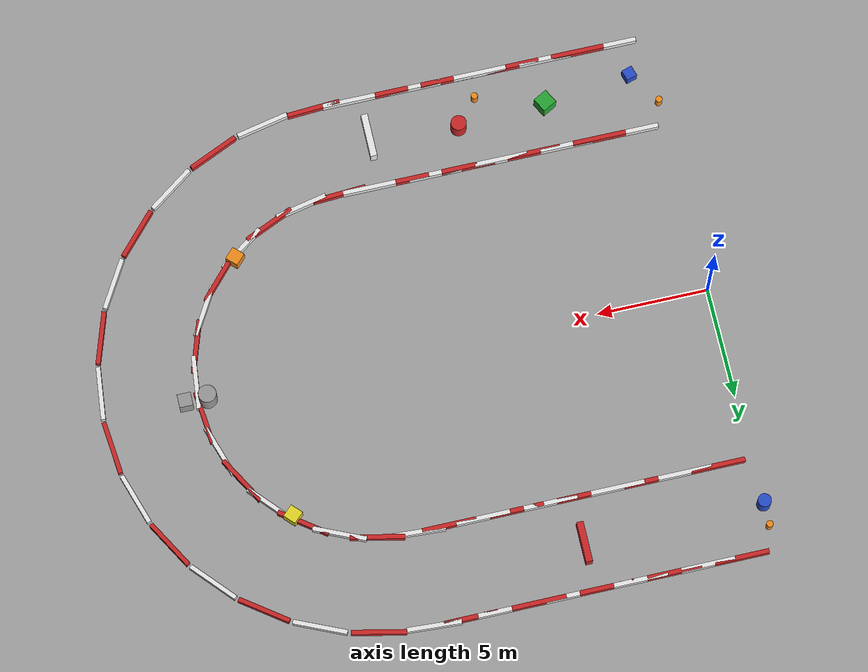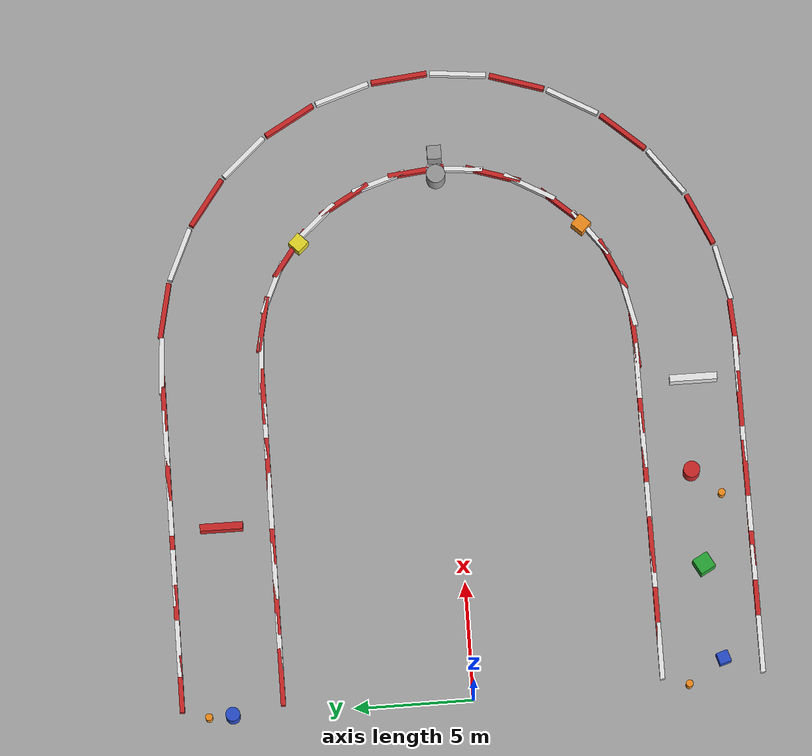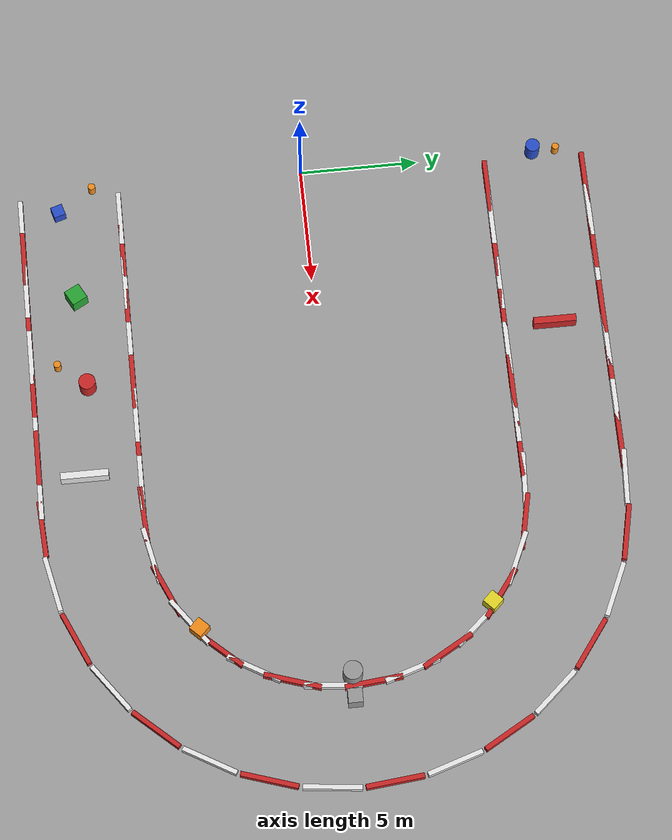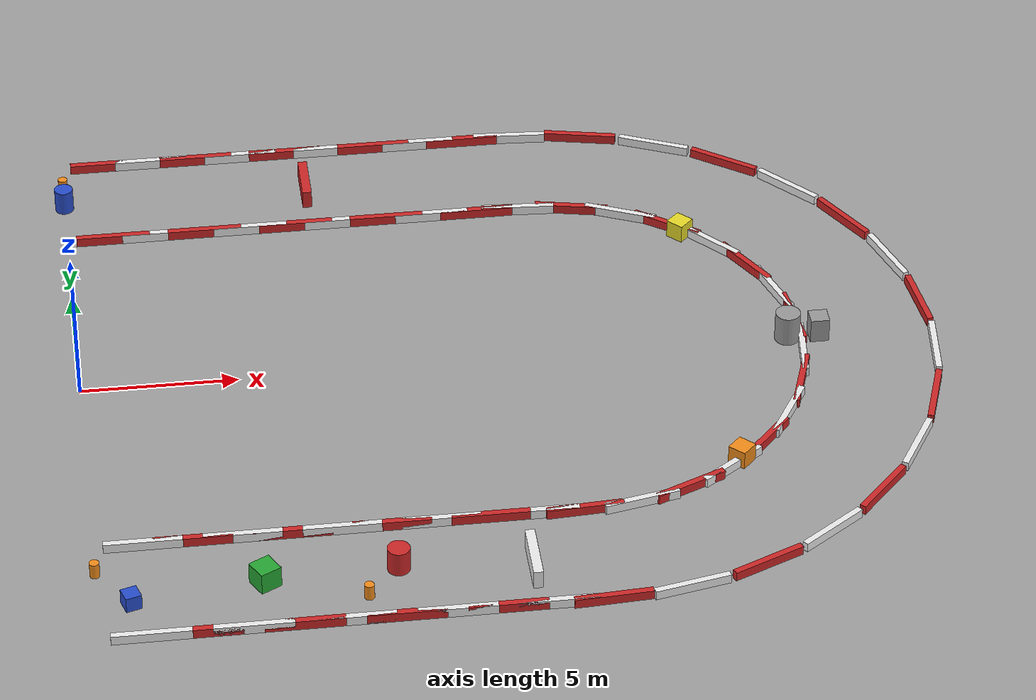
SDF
<sdf version="1.6">
 <world name="road_world">
  <include><uri>model://sun</uri></include>
  <model name="left_curb_11">
   <static>true</static>
   <pose>1.500 -7.900 0.15 0 0 0.000</pose>
   <link name="link">
    <collision name="collision"><geometry><box><size>2.4 0.2 0.3</size></box></geometry></collision>
    <visual name="visual">
     <geometry><box><size>2.4 0.2 0.3</size></box></geometry>
     <material>
      <script><uri>file://media/materials/scripts/gazebo.material</uri><name>Gazebo/White</name></script>
     </material>
    </visual>
   </link>
  </model>
  <model name="left_curb_12">
   <static>true</static>
   <pose>3.000 -7.900 0.15 0 0 0.000</pose>
   <link name="link">
    <collision name="collision"><geometry><box><size>2.4 0.2 0.3</size></box></geometry></collision>
    <visual name="visual">
     <geometry><box><size>2.4 0.2 0.3</size></box></geometry>
     <material>
      <script><uri>file://media/materials/scripts/gazebo.material</uri><name>Gazebo/Red</name></script>
     </material>
    </visual>
   </link>
  </model>
  <model name="left_curb_13">
   <static>true</static>
   <pose>4.500 -7.900 0.15 0 0 0.000</pose>
   <link name="link">
    <collision name="collision"><geometry><box><size>2.4 0.2 0.3</size></box></geometry></collision>
    <visual name="visual">
     <geometry><box><size>2.4 0.2 0.3</size></box></geometry>
     <material>
      <script><uri>file://media/materials/scripts/gazebo.material</uri><name>Gazebo/White</name></script>
     </material>
    </visual>
   </link>
  </model>
  <model name="left_curb_14">
   <static>true</static>
   <pose>6.000 -7.900 0.15 0 0 0.000</pose>
   <link name="link">
    <collision name="collision"><geometry><box><size>2.4 0.2 0.3</size></box></geometry></collision>
    <visual name="visual">
     <geometry><box><size>2.4 0.2 0.3</size></box></geometry>
     <material>
      <script><uri>file://media/materials/scripts/gazebo.material</uri><name>Gazebo/Red</name></script>
     </material>
    </visual>
   </link>
  </model>
  <model name="left_curb_15">
   <static>true</static>
   <pose>7.500 -7.900 0.15 0 0 0.000</pose>
   <link name="link">
    <collision name="collision"><geometry><box><size>2.4 0.2 0.3</size></box></geometry></collision>
    <visual name="visual">
     <geometry><box><size>2.4 0.2 0.3</size></box></geometry>
     <material>
      <script><uri>file://media/materials/scripts/gazebo.material</uri><name>Gazebo/White</name></script>
     </material>
    </visual>
   </link>
  </model>
  <model name="left_curb_16">
   <static>true</static>
   <pose>9.000 -7.900 0.15 0 0 0.000</pose>
   <link name="link">
    <collision name="collision"><geometry><box><size>2.4 0.2 0.3</size></box></geometry></collision>
    <visual name="visual">
     <geometry><box><size>2.4 0.2 0.3</size></box></geometry>
     <material>
      <script><uri>file://media/materials/scripts/gazebo.material</uri><name>Gazebo/Red</name></script>
     </material>
    </visual>
   </link>
  </model>
  <model name="left_curb_17">
   <static>true</static>
   <pose>10.500 -7.900 0.15 0 0 0.000</pose>
   <link name="link">
    <collision name="collision"><geometry><box><size>2.4 0.2 0.3</size></box></geometry></collision>
    <visual name="visual">
     <geometry><box><size>2.4 0.2 0.3</size></box></geometry>
     <material>
      <script><uri>file://media/materials/scripts/gazebo.material</uri><name>Gazebo/White</name></script>
     </material>
    </visual>
   </link>
  </model>
  <model name="left_curb_18">
   <static>true</static>
   <pose>12.000 -7.900 0.15 0 0 0.000</pose>
   <link name="link">
    <collision name="collision"><geometry><box><size>2.4 0.2 0.3</size></box></geometry></collision>
    <visual name="visual">
     <geometry><box><size>2.4 0.2 0.3</size></box></geometry>
     <material>
      <script><uri>file://media/materials/scripts/gazebo.material</uri><name>Gazebo/Red</name></script>
     </material>
    </visual>
   </link>
  </model>
  <model name="left_curb_19">
   <static>true</static>
   <pose>13.500 -7.900 0.15 0 0 0.000</pose>
   <link name="link">
    <collision name="collision"><geometry><box><size>2.4 0.2 0.3</size></box></geometry></collision>
    <visual name="visual">
     <geometry><box><size>2.4 0.2 0.3</size></box></geometry>
     <material>
      <script><uri>file://media/materials/scripts/gazebo.material</uri><name>Gazebo/White</name></script>
     </material>
    </visual>
   </link>
  </model>
  <model name="left_curb_20">
   <static>true</static>
   <pose>14.872 -7.904 0.15 0 0 0.061</pose>
   <link name="link">
    <collision name="collision"><geometry><box><size>2.4 0.2 0.3</size></box></geometry></collision>
    <visual name="visual">
     <geometry><box><size>2.4 0.2 0.3</size></box></geometry>
     <material>
      <script><uri>file://media/materials/scripts/gazebo.material</uri><name>Gazebo/Red</name></script>
     </material>
    </visual>
   </link>
  </model>
  <model name="left_curb_21">
   <static>true</static>
   <pose>16.643 -7.727 0.15 0 0 0.209</pose>
   <link name="link">
    <collision name="collision"><geometry><box><size>2.4 0.2 0.3</size></box></geometry></collision>
    <visual name="visual">
     <geometry><box><size>2.4 0.2 0.3</size></box></geometry>
     <material>
      <script><uri>file://media/materials/scripts/gazebo.material</uri><name>Gazebo/White</name></script>
     </material>
    </visual>
   </link>
  </model>
  <model name="left_curb_22">
   <static>true</static>
   <pose>18.213 -7.217 0.15 0 0 0.419</pose>
   <link name="link">
    <collision name="collision"><geometry><box><size>2.4 0.2 0.3</size></box></geometry></collision>
    <visual name="visual">
     <geometry><box><size>2.4 0.2 0.3</size></box></geometry>
     <material>
      <script><uri>file://media/materials/scripts/gazebo.material</uri><name>Gazebo/Red</name></script>
     </material>
    </visual>
   </link>
  </model>
  <model name="left_curb_23">
   <static>true</static>
   <pose>19.644 -6.391 0.15 0 0 0.628</pose>
   <link name="link">
    <collision name="collision"><geometry><box><size>2.4 0.2 0.3</size></box></geometry></collision>
    <visual name="visual">
     <geometry><box><size>2.4 0.2 0.3</size></box></geometry>
     <material>
      <script><uri>file://media/materials/scripts/gazebo.material</uri><name>Gazebo/White</name></script>
     </material>
    </visual>
   </link>
  </model>
  <model name="left_curb_24">
   <static>true</static>
   <pose>20.871 -5.286 0.15 0 0 0.838</pose>
   <link name="link">
    <collision name="collision"><geometry><box><size>2.4 0.2 0.3</size></box></geometry></collision>
    <visual name="visual">
     <geometry><box><size>2.4 0.2 0.3</size></box></geometry>
     <material>
      <script><uri>file://media/materials/scripts/gazebo.material</uri><name>Gazebo/Red</name></script>
     </material>
    </visual>
   </link>
  </model>
  <model name="left_curb_25">
   <static>true</static>
   <pose>21.842 -3.950 0.15 0 0 1.047</pose>
   <link name="link">
    <collision name="collision"><geometry><box><size>2.4 0.2 0.3</size></box></geometry></collision>
    <visual name="visual">
     <geometry><box><size>2.4 0.2 0.3</size></box></geometry>
     <material>
      <script><uri>file://media/materials/scripts/gazebo.material</uri><name>Gazebo/White</name></script>
     </material>
    </visual>
   </link>
  </model>
  <model name="left_curb_26">
   <static>true</static>
   <pose>22.513 -2.441 0.15 0 0 1.257</pose>
   <link name="link">
    <collision name="collision"><geometry><box><size>2.4 0.2 0.3</size></box></geometry></collision>
    <visual name="visual">
     <geometry><box><size>2.4 0.2 0.3</size></box></geometry>
     <material>
      <script><uri>file://media/materials/scripts/gazebo.material</uri><name>Gazebo/Red</name></script>
     </material>
    </visual>
   </link>
  </model>
  <model name="left_curb_27">
   <static>true</static>
   <pose>22.857 -0.826 0.15 0 0 1.466</pose>
   <link name="link">
    <collision name="collision"><geometry><box><size>2.4 0.2 0.3</size></box></geometry></collision>
    <visual name="visual">
     <geometry><box><size>2.4 0.2 0.3</size></box></geometry>
     <material>
      <script><uri>file://media/materials/scripts/gazebo.material</uri><name>Gazebo/White</name></script>
     </material>
    </visual>
   </link>
  </model>
  <model name="left_curb_28">
   <static>true</static>
   <pose>22.857 0.826 0.15 0 0 1.676</pose>
   <link name="link">
    <collision name="collision"><geometry><box><size>2.4 0.2 0.3</size></box></geometry></collision>
    <visual name="visual">
     <geometry><box><size>2.4 0.2 0.3</size></box></geometry>
     <material>
      <script><uri>file://media/materials/scripts/gazebo.material</uri><name>Gazebo/Red</name></script>
     </material>
    </visual>
   </link>
  </model>
  <model name="left_curb_29">
   <static>true</static>
   <pose>22.513 2.441 0.15 0 0 1.885</pose>
   <link name="link">
    <collision name="collision"><geometry><box><size>2.4 0.2 0.3</size></box></geometry></collision>
    <visual name="visual">
     <geometry><box><size>2.4 0.2 0.3</size></box></geometry>
     <material>
      <script><uri>file://media/materials/scripts/gazebo.material</uri><name>Gazebo/White</name></script>
     </material>
    </visual>
   </link>
  </model>
  <model name="left_curb_30">
   <static>true</static>
   <pose>21.842 3.950 0.15 0 0 2.094</pose>
   <link name="link">
    <collision name="collision"><geometry><box><size>2.4 0.2 0.3</size></box></geometry></collision>
    <visual name="visual">
     <geometry><box><size>2.4 0.2 0.3</size></box></geometry>
     <material>
      <script><uri>file://media/materials/scripts/gazebo.material</uri><name>Gazebo/Red</name></script>
     </material>
    </visual>
   </link>
  </model>
  <model name="left_curb_31">
   <static>true</static>
   <pose>20.871 5.286 0.15 0 0 2.304</pose>
   <link name="link">
    <collision name="collision"><geometry><box><size>2.4 0.2 0.3</size></box></geometry></collision>
    <visual name="visual">
     <geometry><box><size>2.4 0.2 0.3</size></box></geometry>
     <material>
      <script><uri>file://media/materials/scripts/gazebo.material</uri><name>Gazebo/White</name></script>
     </material>
    </visual>
   </link>
  </model>
  <model name="left_curb_32">
   <static>true</static>
   <pose>19.644 6.391 0.15 0 0 2.513</pose>
   <link name="link">
    <collision name="collision"><geometry><box><size>2.4 0.2 0.3</size></box></geometry></collision>
    <visual name="visual">
     <geometry><box><size>2.4 0.2 0.3</size></box></geometry>
     <material>
      <script><uri>file://media/materials/scripts/gazebo.material</uri><name>Gazebo/Red</name></script>
     </material>
    </visual>
   </link>
  </model>
  <model name="left_curb_33">
   <static>true</static>
   <pose>18.213 7.217 0.15 0 0 2.723</pose>
   <link name="link">
    <collision name="collision"><geometry><box><size>2.4 0.2 0.3</size></box></geometry></collision>
    <visual name="visual">
     <geometry><box><size>2.4 0.2 0.3</size></box></geometry>
     <material>
      <script><uri>file://media/materials/scripts/gazebo.material</uri><name>Gazebo/White</name></script>
     </material>
    </visual>
   </link>
  </model>
  <model name="left_curb_34">
   <static>true</static>
   <pose>16.643 7.727 0.15 0 0 2.932</pose>
   <link name="link">
    <collision name="collision"><geometry><box><size>2.4 0.2 0.3</size></box></geometry></collision>
    <visual name="visual">
     <geometry><box><size>2.4 0.2 0.3</size></box></geometry>
     <material>
      <script><uri>file://media/materials/scripts/gazebo.material</uri><name>Gazebo/Red</name></script>
     </material>
    </visual>
   </link>
  </model>
  <model name="left_curb_35">
   <static>true</static>
   <pose>14.872 7.904 0.15 0 0 3.081</pose>
   <link name="link">
    <collision name="collision"><geometry><box><size>2.4 0.2 0.3</size></box></geometry></collision>
    <visual name="visual">
     <geometry><box><size>2.4 0.2 0.3</size></box></geometry>
     <material>
      <script><uri>file://media/materials/scripts/gazebo.material</uri><name>Gazebo/White</name></script>
     </material>
    </visual>
   </link>
  </model>
  <model name="left_curb_36">
   <static>true</static>
   <pose>13.500 7.900 0.15 0 0 3.142</pose>
   <link name="link">
    <collision name="collision"><geometry><box><size>2.4 0.2 0.3</size></box></geometry></collision>
    <visual name="visual">
     <geometry><box><size>2.4 0.2 0.3</size></box></geometry>
     <material>
      <script><uri>file://media/materials/scripts/gazebo.material</uri><name>Gazebo/Red</name></script>
     </material>
    </visual>
   </link>
  </model>
  <model name="left_curb_37">
   <static>true</static>
   <pose>12.000 7.900 0.15 0 0 3.142</pose>
   <link name="link">
    <collision name="collision"><geometry><box><size>2.4 0.2 0.3</size></box></geometry></collision>
    <visual name="visual">
     <geometry><box><size>2.4 0.2 0.3</size></box></geometry>
     <material>
      <script><uri>file://media/materials/scripts/gazebo.material</uri><name>Gazebo/White</name></script>
     </material>
    </visual>
   </link>
  </model>
  <model name="left_curb_38">
   <static>true</static>
   <pose>10.500 7.900 0.15 0 0 3.142</pose>
   <link name="link">
    <collision name="collision"><geometry><box><size>2.4 0.2 0.3</size></box></geometry></collision>
    <visual name="visual">
     <geometry><box><size>2.4 0.2 0.3</size></box></geometry>
     <material>
      <script><uri>file://media/materials/scripts/gazebo.material</uri><name>Gazebo/Red</name></script>
     </material>
    </visual>
   </link>
  </model>
  <model name="left_curb_39">
   <static>true</static>
   <pose>9.000 7.900 0.15 0 0 3.142</pose>
   <link name="link">
    <collision name="collision"><geometry><box><size>2.4 0.2 0.3</size></box></geometry></collision>
    <visual name="visual">
     <geometry><box><size>2.4 0.2 0.3</size></box></geometry>
     <material>
      <script><uri>file://media/materials/scripts/gazebo.material</uri><name>Gazebo/White</name></script>
     </material>
    </visual>
   </link>
  </model>
  <model name="left_curb_40">
   <static>true</static>
   <pose>7.500 7.900 0.15 0 0 3.142</pose>
   <link name="link">
    <collision name="collision"><geometry><box><size>2.4 0.2 0.3</size></box></geometry></collision>
    <visual name="visual">
     <geometry><box><size>2.4 0.2 0.3</size></box></geometry>
     <material>
      <script><uri>file://media/materials/scripts/gazebo.material</uri><name>Gazebo/Red</name></script>
     </material>
    </visual>
   </link>
  </model>
  <model name="left_curb_41">
   <static>true</static>
   <pose>6.000 7.900 0.15 0 0 3.142</pose>
   <link name="link">
    <collision name="collision"><geometry><box><size>2.4 0.2 0.3</size></box></geometry></collision>
    <visual name="visual">
     <geometry><box><size>2.4 0.2 0.3</size></box></geometry>
     <material>
      <script><uri>file://media/materials/scripts/gazebo.material</uri><name>Gazebo/White</name></script>
     </material>
    </visual>
   </link>
  </model>
  <model name="left_curb_42">
   <static>true</static>
   <pose>4.500 7.900 0.15 0 0 3.142</pose>
   <link name="link">
    <collision name="collision"><geometry><box><size>2.4 0.2 0.3</size></box></geometry></collision>
    <visual name="visual">
     <geometry><box><size>2.4 0.2 0.3</size></box></geometry>
     <material>
      <script><uri>file://media/materials/scripts/gazebo.material</uri><name>Gazebo/Red</name></script>
     </material>
    </visual>
   </link>
  </model>
  <model name="left_curb_43">
   <static>true</static>
   <pose>3.000 7.900 0.15 0 0 3.142</pose>
   <link name="link">
    <collision name="collision"><geometry><box><size>2.4 0.2 0.3</size></box></geometry></collision>
    <visual name="visual">
     <geometry><box><size>2.4 0.2 0.3</size></box></geometry>
     <material>
      <script><uri>file://media/materials/scripts/gazebo.material</uri><name>Gazebo/White</name></script>
     </material>
    </visual>
   </link>
  </model>
  <model name="left_curb_44">
   <static>true</static>
   <pose>1.500 7.900 0.15 0 0 3.142</pose>
   <link name="link">
    <collision name="collision"><geometry><box><size>2.4 0.2 0.3</size></box></geometry></collision>
    <visual name="visual">
     <geometry><box><size>2.4 0.2 0.3</size></box></geometry>
     <material>
      <script><uri>file://media/materials/scripts/gazebo.material</uri><name>Gazebo/Red</name></script>
     </material>
    </visual>
   </link>
  </model>
  <model name="right_curb_11">
   <static>true</static>
   <pose>1.500 -12.100 0.15 0 0 0.000</pose>
   <link name="link">
    <collision name="collision"><geometry><box><size>2.4 0.2 0.3</size></box></geometry></collision>
    <visual name="visual">
     <geometry><box><size>2.4 0.2 0.3</size></box></geometry>
     <material>
      <script><uri>file://media/materials/scripts/gazebo.material</uri><name>Gazebo/White</name></script>
     </material>
    </visual>
   </link>
  </model>
  <model name="right_curb_12">
   <static>true</static>
   <pose>3.000 -12.100 0.15 0 0 0.000</pose>
   <link name="link">
    <collision name="collision"><geometry><box><size>2.4 0.2 0.3</size></box></geometry></collision>
    <visual name="visual">
     <geometry><box><size>2.4 0.2 0.3</size></box></geometry>
     <material>
      <script><uri>file://media/materials/scripts/gazebo.material</uri><name>Gazebo/Red</name></script>
     </material>
    </visual>
   </link>
  </model>
  <model name="right_curb_13">
   <static>true</static>
   <pose>4.500 -12.100 0.15 0 0 0.000</pose>
   <link name="link">
    <collision name="collision"><geometry><box><size>2.4 0.2 0.3</size></box></geometry></collision>
    <visual name="visual">
     <geometry><box><size>2.4 0.2 0.3</size></box></geometry>
     <material>
      <script><uri>file://media/materials/scripts/gazebo.material</uri><name>Gazebo/White</name></script>
     </material>
    </visual>
   </link>
  </model>
  <model name="right_curb_14">
   <static>true</static>
   <pose>6.000 -12.100 0.15 0 0 0.000</pose>
   <link name="link">
    <collision name="collision"><geometry><box><size>2.4 0.2 0.3</size></box></geometry></collision>
    <visual name="visual">
     <geometry><box><size>2.4 0.2 0.3</size></box></geometry>
     <material>
      <script><uri>file://media/materials/scripts/gazebo.material</uri><name>Gazebo/Red</name></script>
     </material>
    </visual>
   </link>
  </model>
  <model name="right_curb_15">
   <static>true</static>
   <pose>7.500 -12.100 0.15 0 0 0.000</pose>
   <link name="link">
    <collision name="collision"><geometry><box><size>2.4 0.2 0.3</size></box></geometry></collision>
    <visual name="visual">
     <geometry><box><size>2.4 0.2 0.3</size></box></geometry>
     <material>
      <script><uri>file://media/materials/scripts/gazebo.material</uri><name>Gazebo/White</name></script>
     </material>
    </visual>
   </link>
  </model>
  <model name="right_curb_16">
   <static>true</static>
   <pose>9.000 -12.100 0.15 0 0 0.000</pose>
   <link name="link">
    <collision name="collision"><geometry><box><size>2.4 0.2 0.3</size></box></geometry></collision>
    <visual name="visual">
     <geometry><box><size>2.4 0.2 0.3</size></box></geometry>
     <material>
      <script><uri>file://media/materials/scripts/gazebo.material</uri><name>Gazebo/Red</name></script>
     </material>
    </visual>
   </link>
  </model>
  <model name="right_curb_17">
   <static>true</static>
   <pose>10.500 -12.100 0.15 0 0 0.000</pose>
   <link name="link">
    <collision name="collision"><geometry><box><size>2.4 0.2 0.3</size></box></geometry></collision>
    <visual name="visual">
     <geometry><box><size>2.4 0.2 0.3</size></box></geometry>
     <material>
      <script><uri>file://media/materials/scripts/gazebo.material</uri><name>Gazebo/White</name></script>
     </material>
    </visual>
   </link>
  </model>
  <model name="right_curb_18">
   <static>true</static>
   <pose>12.000 -12.100 0.15 0 0 0.000</pose>
   <link name="link">
    <collision name="collision"><geometry><box><size>2.4 0.2 0.3</size></box></geometry></collision>
    <visual name="visual">
     <geometry><box><size>2.4 0.2 0.3</size></box></geometry>
     <material>
      <script><uri>file://media/materials/scripts/gazebo.material</uri><name>Gazebo/Red</name></script>
     </material>
    </visual>
   </link>
  </model>
  <model name="right_curb_19">
   <static>true</static>
   <pose>13.500 -12.100 0.15 0 0 0.000</pose>
   <link name="link">
    <collision name="collision"><geometry><box><size>2.4 0.2 0.3</size></box></geometry></collision>
    <visual name="visual">
     <geometry><box><size>2.4 0.2 0.3</size></box></geometry>
     <material>
      <script><uri>file://media/materials/scripts/gazebo.material</uri><name>Gazebo/White</name></script>
     </material>
    </visual>
   </link>
  </model>
  <model name="right_curb_20">
   <static>true</static>
   <pose>15.128 -12.096 0.15 0 0 0.061</pose>
   <link name="link">
    <collision name="collision"><geometry><box><size>2.4 0.2 0.3</size></box></geometry></collision>
    <visual name="visual">
     <geometry><box><size>2.4 0.2 0.3</size></box></geometry>
     <material>
      <script><uri>file://media/materials/scripts/gazebo.material</uri><name>Gazebo/Red</name></script>
     </material>
    </visual>
   </link>
  </model>
  <model name="right_curb_21">
   <static>true</static>
   <pose>17.516 -11.836 0.15 0 0 0.209</pose>
   <link name="link">
    <collision name="collision"><geometry><box><size>2.4 0.2 0.3</size></box></geometry></collision>
    <visual name="visual">
     <geometry><box><size>2.4 0.2 0.3</size></box></geometry>
     <material>
      <script><uri>file://media/materials/scripts/gazebo.material</uri><name>Gazebo/White</name></script>
     </material>
    </visual>
   </link>
  </model>
  <model name="right_curb_22">
   <static>true</static>
   <pose>19.922 -11.054 0.15 0 0 0.419</pose>
   <link name="link">
    <collision name="collision"><geometry><box><size>2.4 0.2 0.3</size></box></geometry></collision>
    <visual name="visual">
     <geometry><box><size>2.4 0.2 0.3</size></box></geometry>
     <material>
      <script><uri>file://media/materials/scripts/gazebo.material</uri><name>Gazebo/Red</name></script>
     </material>
    </visual>
   </link>
  </model>
  <model name="right_curb_23">
   <static>true</static>
   <pose>22.112 -9.789 0.15 0 0 0.628</pose>
   <link name="link">
    <collision name="collision"><geometry><box><size>2.4 0.2 0.3</size></box></geometry></collision>
    <visual name="visual">
     <geometry><box><size>2.4 0.2 0.3</size></box></geometry>
     <material>
      <script><uri>file://media/materials/scripts/gazebo.material</uri><name>Gazebo/White</name></script>
     </material>
    </visual>
   </link>
  </model>
  <model name="right_curb_24">
   <static>true</static>
   <pose>23.992 -8.096 0.15 0 0 0.838</pose>
   <link name="link">
    <collision name="collision"><geometry><box><size>2.4 0.2 0.3</size></box></geometry></collision>
    <visual name="visual">
     <geometry><box><size>2.4 0.2 0.3</size></box></geometry>
     <material>
      <script><uri>file://media/materials/scripts/gazebo.material</uri><name>Gazebo/Red</name></script>
     </material>
    </visual>
   </link>
  </model>
  <model name="right_curb_25">
   <static>true</static>
   <pose>25.479 -6.050 0.15 0 0 1.047</pose>
   <link name="link">
    <collision name="collision"><geometry><box><size>2.4 0.2 0.3</size></box></geometry></collision>
    <visual name="visual">
     <geometry><box><size>2.4 0.2 0.3</size></box></geometry>
     <material>
      <script><uri>file://media/materials/scripts/gazebo.material</uri><name>Gazebo/White</name></script>
     </material>
    </visual>
   </link>
  </model>
  <model name="right_curb_26">
   <static>true</static>
   <pose>26.508 -3.739 0.15 0 0 1.257</pose>
   <link name="link">
    <collision name="collision"><geometry><box><size>2.4 0.2 0.3</size></box></geometry></collision>
    <visual name="visual">
     <geometry><box><size>2.4 0.2 0.3</size></box></geometry>
     <material>
      <script><uri>file://media/materials/scripts/gazebo.material</uri><name>Gazebo/Red</name></script>
     </material>
    </visual>
   </link>
  </model>
  <model name="right_curb_27">
   <static>true</static>
   <pose>27.034 -1.265 0.15 0 0 1.466</pose>
   <link name="link">
    <collision name="collision"><geometry><box><size>2.4 0.2 0.3</size></box></geometry></collision>
    <visual name="visual">
     <geometry><box><size>2.4 0.2 0.3</size></box></geometry>
     <material>
      <script><uri>file://media/materials/scripts/gazebo.material</uri><name>Gazebo/White</name></script>
     </material>
    </visual>
   </link>
  </model>
  <model name="right_curb_28">
   <static>true</static>
   <pose>27.034 1.265 0.15 0 0 1.676</pose>
   <link name="link">
    <collision name="collision"><geometry><box><size>2.4 0.2 0.3</size></box></geometry></collision>
    <visual name="visual">
     <geometry><box><size>2.4 0.2 0.3</size></box></geometry>
     <material>
      <script><uri>file://media/materials/scripts/gazebo.material</uri><name>Gazebo/Red</name></script>
     </material>
    </visual>
   </link>
  </model>
  <model name="right_curb_29">
   <static>true</static>
   <pose>26.508 3.739 0.15 0 0 1.885</pose>
   <link name="link">
    <collision name="collision"><geometry><box><size>2.4 0.2 0.3</size></box></geometry></collision>
    <visual name="visual">
     <geometry><box><size>2.4 0.2 0.3</size></box></geometry>
     <material>
      <script><uri>file://media/materials/scripts/gazebo.material</uri><name>Gazebo/White</name></script>
     </material>
    </visual>
   </link>
  </model>
  <model name="right_curb_30">
   <static>true</static>
   <pose>25.479 6.050 0.15 0 0 2.094</pose>
   <link name="link">
    <collision name="collision"><geometry><box><size>2.4 0.2 0.3</size></box></geometry></collision>
    <visual name="visual">
     <geometry><box><size>2.4 0.2 0.3</size></box></geometry>
     <material>
      <script><uri>file://media/materials/scripts/gazebo.material</uri><name>Gazebo/Red</name></script>
     </material>
    </visual>
   </link>
  </model>
  <model name="right_curb_31">
   <static>true</static>
   <pose>23.992 8.096 0.15 0 0 2.304</pose>
   <link name="link">
    <collision name="collision"><geometry><box><size>2.4 0.2 0.3</size></box></geometry></collision>
    <visual name="visual">
     <geometry><box><size>2.4 0.2 0.3</size></box></geometry>
     <material>
      <script><uri>file://media/materials/scripts/gazebo.material</uri><name>Gazebo/White</name></script>
     </material>
    </visual>
   </link>
  </model>
  <model name="right_curb_32">
   <static>true</static>
   <pose>22.112 9.789 0.15 0 0 2.513</pose>
   <link name="link">
    <collision name="collision"><geometry><box><size>2.4 0.2 0.3</size></box></geometry></collision>
    <visual name="visual">
     <geometry><box><size>2.4 0.2 0.3</size></box></geometry>
     <material>
      <script><uri>file://media/materials/scripts/gazebo.material</uri><name>Gazebo/Red</name></script>
     </material>
    </visual>
   </link>
  </model>
  <model name="right_curb_33">
   <static>true</static>
   <pose>19.922 11.054 0.15 0 0 2.723</pose>
   <link name="link">
    <collision name="collision"><geometry><box><size>2.4 0.2 0.3</size></box></geometry></collision>
    <visual name="visual">
     <geometry><box><size>2.4 0.2 0.3</size></box></geometry>
     <material>
      <script><uri>file://media/materials/scripts/gazebo.material</uri><name>Gazebo/White</name></script>
     </material>
    </visual>
   </link>
  </model>
  <model name="right_curb_34">
   <static>true</static>
   <pose>17.516 11.836 0.15 0 0 2.932</pose>
   <link name="link">
    <collision name="collision"><geometry><box><size>2.4 0.2 0.3</size></box></geometry></collision>
    <visual name="visual">
     <geometry><box><size>2.4 0.2 0.3</size></box></geometry>
     <material>
      <script><uri>file://media/materials/scripts/gazebo.material</uri><name>Gazebo/Red</name></script>
     </material>
    </visual>
   </link>
  </model>
  <model name="right_curb_35">
   <static>true</static>
   <pose>15.128 12.096 0.15 0 0 3.081</pose>
   <link name="link">
    <collision name="collision"><geometry><box><size>2.4 0.2 0.3</size></box></geometry></collision>
    <visual name="visual">
     <geometry><box><size>2.4 0.2 0.3</size></box></geometry>
     <material>
      <script><uri>file://media/materials/scripts/gazebo.material</uri><name>Gazebo/White</name></script>
     </material>
    </visual>
   </link>
  </model>
  <model name="right_curb_36">
   <static>true</static>
   <pose>13.500 12.100 0.15 0 0 3.142</pose>
   <link name="link">
    <collision name="collision"><geometry><box><size>2.4 0.2 0.3</size></box></geometry></collision>
    <visual name="visual">
     <geometry><box><size>2.4 0.2 0.3</size></box></geometry>
     <material>
      <script><uri>file://media/materials/scripts/gazebo.material</uri><name>Gazebo/Red</name></script>
     </material>
    </visual>
   </link>
  </model>
  <model name="right_curb_37">
   <static>true</static>
   <pose>12.000 12.100 0.15 0 0 3.142</pose>
   <link name="link">
    <collision name="collision"><geometry><box><size>2.4 0.2 0.3</size></box></geometry></collision>
    <visual name="visual">
     <geometry><box><size>2.4 0.2 0.3</size></box></geometry>
     <material>
      <script><uri>file://media/materials/scripts/gazebo.material</uri><name>Gazebo/White</name></script>
     </material>
    </visual>
   </link>
  </model>
  <model name="right_curb_38">
   <static>true</static>
   <pose>10.500 12.100 0.15 0 0 3.142</pose>
   <link name="link">
    <collision name="collision"><geometry><box><size>2.4 0.2 0.3</size></box></geometry></collision>
    <visual name="visual">
     <geometry><box><size>2.4 0.2 0.3</size></box></geometry>
     <material>
      <script><uri>file://media/materials/scripts/gazebo.material</uri><name>Gazebo/Red</name></script>
     </material>
    </visual>
   </link>
  </model>
  <model name="right_curb_39">
   <static>true</static>
   <pose>9.000 12.100 0.15 0 0 3.142</pose>
   <link name="link">
    <collision name="collision"><geometry><box><size>2.4 0.2 0.3</size></box></geometry></collision>
    <visual name="visual">
     <geometry><box><size>2.4 0.2 0.3</size></box></geometry>
     <material>
      <script><uri>file://media/materials/scripts/gazebo.material</uri><name>Gazebo/White</name></script>
     </material>
    </visual>
   </link>
  </model>
  <model name="right_curb_40">
   <static>true</static>
   <pose>7.500 12.100 0.15 0 0 3.142</pose>
   <link name="link">
    <collision name="collision"><geometry><box><size>2.4 0.2 0.3</size></box></geometry></collision>
    <visual name="visual">
     <geometry><box><size>2.4 0.2 0.3</size></box></geometry>
     <material>
      <script><uri>file://media/materials/scripts/gazebo.material</uri><name>Gazebo/Red</name></script>
     </material>
    </visual>
   </link>
  </model>
  <model name="right_curb_41">
   <static>true</static>
   <pose>6.000 12.100 0.15 0 0 3.142</pose>
   <link name="link">
    <collision name="collision"><geometry><box><size>2.4 0.2 0.3</size></box></geometry></collision>
    <visual name="visual">
     <geometry><box><size>2.4 0.2 0.3</size></box></geometry>
     <material>
      <script><uri>file://media/materials/scripts/gazebo.material</uri><name>Gazebo/White</name></script>
     </material>
    </visual>
   </link>
  </model>
  <model name="right_curb_42">
   <static>true</static>
   <pose>4.500 12.100 0.15 0 0 3.142</pose>
   <link name="link">
    <collision name="collision"><geometry><box><size>2.4 0.2 0.3</size></box></geometry></collision>
    <visual name="visual">
     <geometry><box><size>2.4 0.2 0.3</size></box></geometry>
     <material>
      <script><uri>file://media/materials/scripts/gazebo.material</uri><name>Gazebo/Red</name></script>
     </material>
    </visual>
   </link>
  </model>
  <model name="right_curb_43">
   <static>true</static>
   <pose>3.000 12.100 0.15 0 0 3.142</pose>
   <link name="link">
    <collision name="collision"><geometry><box><size>2.4 0.2 0.3</size></box></geometry></collision>
    <visual name="visual">
     <geometry><box><size>2.4 0.2 0.3</size></box></geometry>
     <material>
      <script><uri>file://media/materials/scripts/gazebo.material</uri><name>Gazebo/White</name></script>
     </material>
    </visual>
   </link>
  </model>
  <model name="right_curb_44">
   <static>true</static>
   <pose>1.500 12.100 0.15 0 0 3.142</pose>
   <link name="link">
    <collision name="collision"><geometry><box><size>2.4 0.2 0.3</size></box></geometry></collision>
    <visual name="visual">
     <geometry><box><size>2.4 0.2 0.3</size></box></geometry>
     <material>
      <script><uri>file://media/materials/scripts/gazebo.material</uri><name>Gazebo/Red</name></script>
     </material>
    </visual>
   </link>
  </model>
  <model name="cone_bottom_1">
   <static>true</static>
   <pose>0.0 -9.0 0.25 0 0 0</pose>
   <link name="link">
    <collision name="collision">
     <geometry><cylinder><radius>0.15</radius><length>0.5</length></cylinder></geometry>
    </collision>
    <visual name="visual">
     <geometry><cylinder><radius>0.15</radius><length>0.5</length></cylinder></geometry>
     <material>
      <script><uri>file://media/materials/scripts/gazebo.material</uri><name>Gazebo/Orange</name></script>
     </material>
    </visual>
   </link>
  </model>
  <model name="cone_bottom_2">
   <static>true</static>
   <pose>8.0 -11.0 0.25 0 0 0</pose>
   <link name="link">
    <collision name="collision">
     <geometry><cylinder><radius>0.15</radius><length>0.5</length></cylinder></geometry>
    </collision>
    <visual name="visual">
     <geometry><cylinder><radius>0.15</radius><length>0.5</length></cylinder></geometry>
     <material>
      <script><uri>file://media/materials/scripts/gazebo.material</uri><name>Gazebo/Orange</name></script>
     </material>
    </visual>
   </link>
  </model>
  <model name="barrier_right">
   <static>true</static>
   <pose>23.5 0.0 0.4 0 0 0</pose>
   <link name="link">
    <collision name="collision"><geometry><box><size>0.6 0.6 0.8</size></box></geometry></collision>
    <visual name="visual">
     <geometry><box><size>0.6 0.6 0.8</size></box></geometry>
     <material>
      <script><uri>file://media/materials/scripts/gazebo.material</uri><name>Gazebo/Grey</name></script>
     </material>
    </visual>
   </link>
  </model>
  <model name="cone_top_1">
   <static>true</static>
   <pose>0.0 11.0 0.25 0 0 0</pose>
   <link name="link">
    <collision name="collision">
     <geometry><cylinder><radius>0.15</radius><length>0.5</length></cylinder></geometry>
    </collision>
    <visual name="visual">
     <geometry><cylinder><radius>0.15</radius><length>0.5</length></cylinder></geometry>
     <material>
      <script><uri>file://media/materials/scripts/gazebo.material</uri><name>Gazebo/Orange</name></script>
     </material>
    </visual>
   </link>
  </model>
  <model name="obstacle_box_2">
   <static>true</static>
   <pose>1.0 -10.5 0.25 0 0 0.3</pose>
   <link name="link">
    <collision name="collision"><geometry><box><size>0.5 0.5 0.5</size></box></geometry></collision>
    <visual name="visual">
     <geometry><box><size>0.5 0.5 0.5</size></box></geometry>
     <material>
      <script><uri>file://media/materials/scripts/gazebo.material</uri><name>Gazebo/Blue</name></script>
     </material>
    </visual>
   </link>
  </model>
  <model name="obstacle_box_3">
   <static>true</static>
   <pose>5.0 -10.0 0.35 0 0 0.5</pose>
   <link name="link">
    <collision name="collision"><geometry><box><size>0.7 0.7 0.7</size></box></geometry></collision>
    <visual name="visual">
     <geometry><box><size>0.7 0.7 0.7</size></box></geometry>
     <material>
      <script><uri>file://media/materials/scripts/gazebo.material</uri><name>Gazebo/Green</name></script>
     </material>
    </visual>
   </link>
  </model>
  <model name="obstacle_cyl_2">
   <static>true</static>
   <pose>9.0 -9.8 0.4 0 0 0</pose>
   <link name="link">
    <collision name="collision">
     <geometry><cylinder><radius>0.35</radius><length>0.8</length></cylinder></geometry>
    </collision>
    <visual name="visual">
     <geometry><cylinder><radius>0.35</radius><length>0.8</length></cylinder></geometry>
     <material>
      <script><uri>file://media/materials/scripts/gazebo.material</uri><name>Gazebo/Red</name></script>
     </material>
    </visual>
   </link>
  </model>
  <model name="obstacle_wall_1">
   <static>true</static>
   <pose>13.0 -10.2 0.3 0 0 0</pose>
   <link name="link">
    <collision name="collision"><geometry><box><size>0.3 2.0 0.6</size></box></geometry></collision>
    <visual name="visual">
     <geometry><box><size>0.3 2.0 0.6</size></box></geometry>
     <material>
      <script><uri>file://media/materials/scripts/gazebo.material</uri><name>Gazebo/White</name></script>
     </material>
    </visual>
   </link>
  </model>
  <model name="obstacle_box_4">
   <static>true</static>
   <pose>20.0 -6.0 0.3 0 0 0.8</pose>
   <link name="link">
    <collision name="collision"><geometry><box><size>0.6 0.6 0.6</size></box></geometry></collision>
    <visual name="visual">
     <geometry><box><size>0.6 0.6 0.6</size></box></geometry>
     <material>
      <script><uri>file://media/materials/scripts/gazebo.material</uri><name>Gazebo/Orange</name></script>
     </material>
    </visual>
   </link>
  </model>
  <model name="obstacle_cyl_3">
   <static>true</static>
   <pose>22.5 0.0 0.5 0 0 0</pose>
   <link name="link">
    <collision name="collision">
     <geometry><cylinder><radius>0.4</radius><length>1.0</length></cylinder></geometry>
    </collision>
    <visual name="visual">
     <geometry><cylinder><radius>0.4</radius><length>1.0</length></cylinder></geometry>
     <material>
      <script><uri>file://media/materials/scripts/gazebo.material</uri><name>Gazebo/Grey</name></script>
     </material>
    </visual>
   </link>
  </model>
  <model name="obstacle_box_5">
   <static>true</static>
   <pose>20.0 6.0 0.3 0 0 -0.8</pose>
   <link name="link">
    <collision name="collision"><geometry><box><size>0.6 0.6 0.6</size></box></geometry></collision>
    <visual name="visual">
     <geometry><box><size>0.6 0.6 0.6</size></box></geometry>
     <material>
      <script><uri>file://media/materials/scripts/gazebo.material</uri><name>Gazebo/Yellow</name></script>
     </material>
    </visual>
   </link>
  </model>
  <model name="obstacle_wall_2">
   <static>true</static>
   <pose>8.0 10.0 0.3 0 0 0</pose>
   <link name="link">
    <collision name="collision"><geometry><box><size>0.3 1.8 0.6</size></box></geometry></collision>
    <visual name="visual">
     <geometry><box><size>0.3 1.8 0.6</size></box></geometry>
     <material>
      <script><uri>file://media/materials/scripts/gazebo.material</uri><name>Gazebo/Red</name></script>
     </material>
    </visual>
   </link>
  </model>
  <model name="obstacle_cyl_4">
   <static>true</static>
   <pose>0.0 10.0 0.4 0 0 0</pose>
   <link name="link">
    <collision name="collision">
     <geometry><cylinder><radius>0.3</radius><length>0.8</length></cylinder></geometry>
    </collision>
    <visual name="visual">
     <geometry><cylinder><radius>0.3</radius><length>0.8</length></cylinder></geometry>
     <material>
      <script><uri>file://media/materials/scripts/gazebo.material</uri><name>Gazebo/Blue</name></script>
     </material>
    </visual>
   </link>
  </model>
 </world>
</sdf>
